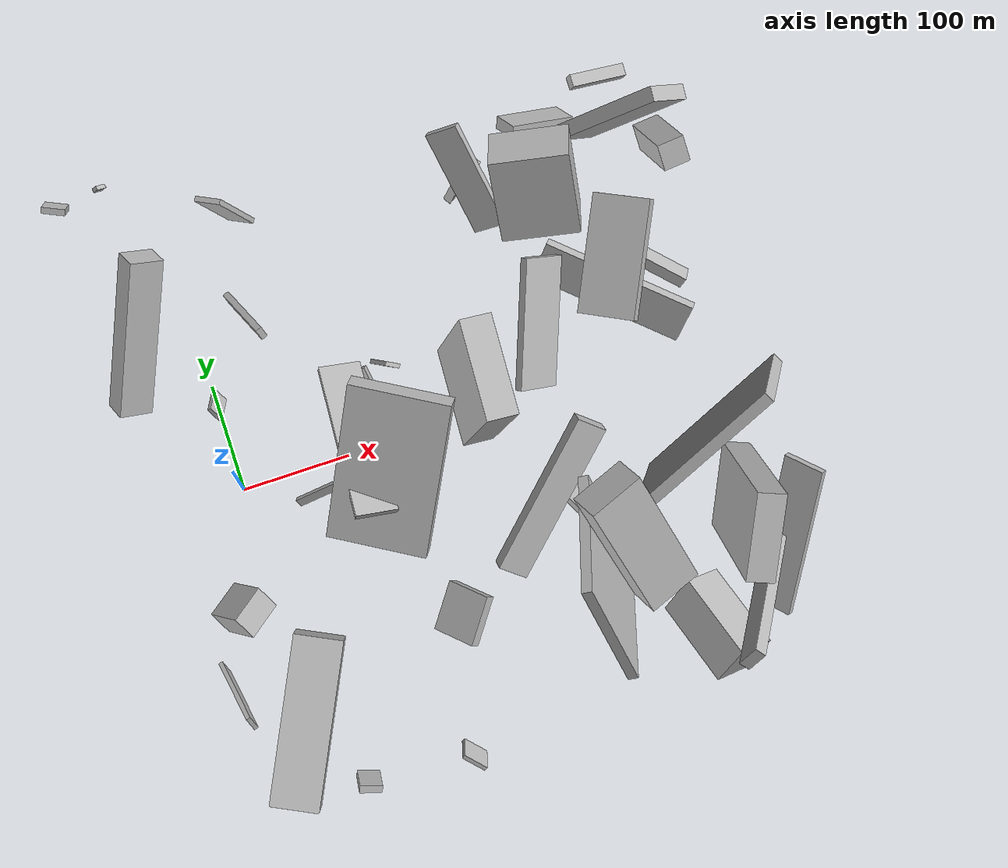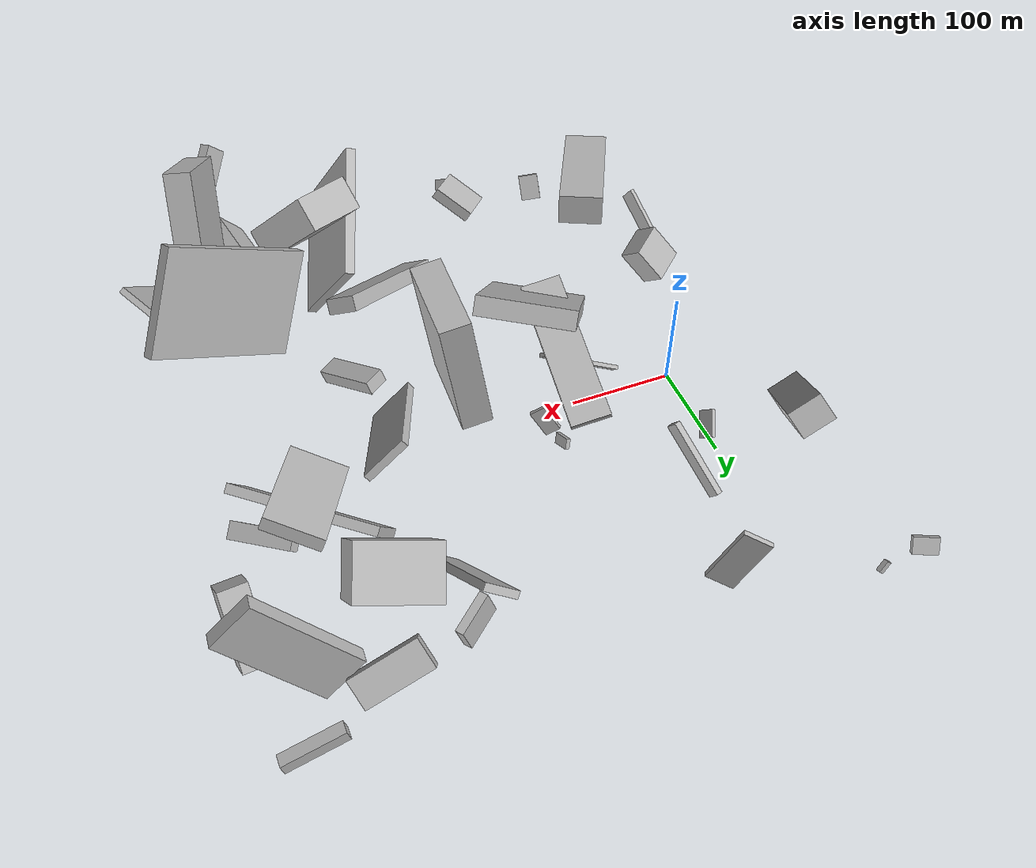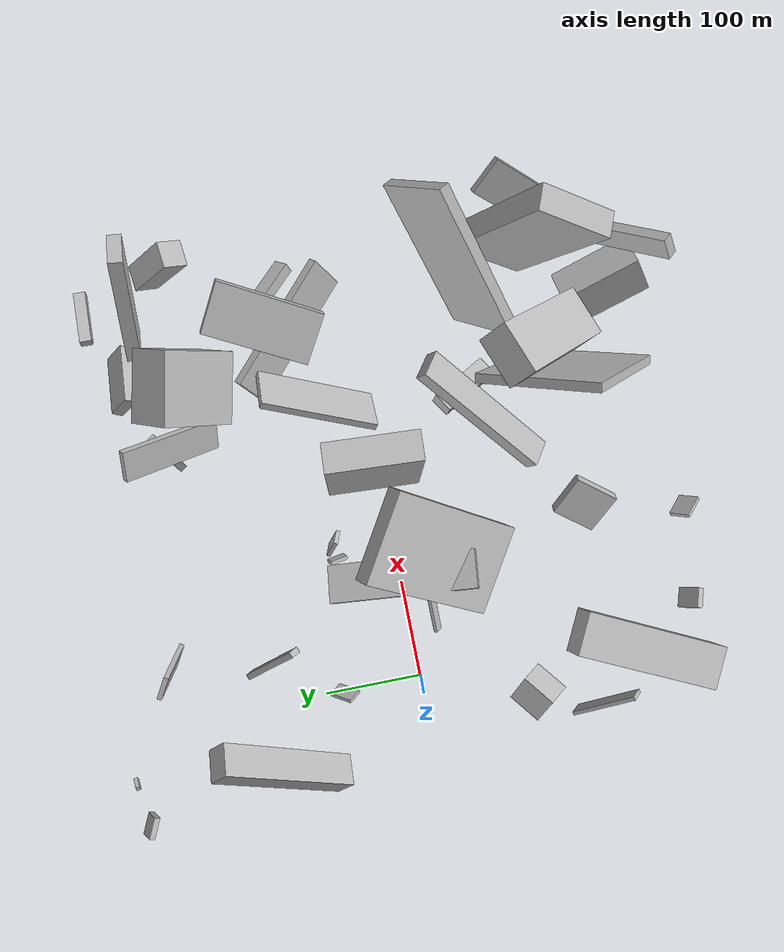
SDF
<sdf version="1.6">
 <world name="default">
  <scene>
   <sky><clouds><speed>12</speed></clouds></sky>
   <ambient>0.4 0.4 0.4 1</ambient>
   <background>0.7 0.7 0.7 1</background>
   <shadows>1</shadows>
  </scene>
  <gravity>0 0 -9.8066</gravity>
  <magnetic_field>6e-06 2.3e-05 -4.2e-05</magnetic_field>
  <physics default="0" name="default_physics" type="ode">
   <ode>
    <solver>
     <type>quick</type>
     <iters>10</iters>
     <sor>1.0</sor>
     <use_dynamic_moi_rescaling>0</use_dynamic_moi_rescaling>
    </solver>
    <constraints>
     <cfm>0</cfm>
     <erp>0.2</erp>
     <contact_max_correcting_vel>100</contact_max_correcting_vel>
     <contact_surface_layer>0.001</contact_surface_layer>
    </constraints>
   </ode>
   <max_step_size>0.004</max_step_size>
   <real_time_factor>1</real_time_factor>
   <real_time_update_rate>250</real_time_update_rate>
  </physics>
  <light name="sun" type="directional">
   <pose>0 0 10 0 0 0</pose>
   <diffuse>0.8 0.8 0.8 1</diffuse>
   <specular>0.2 0.2 0.2 1</specular>
   <attenuation>
    <range>1000</range>
    <constant>0.9</constant>
    <linear>0.01</linear>
    <quadratic>0.001</quadratic>
   </attenuation>
   <direction>-0.5 0.1 -0.9</direction>
  </light>
  <model name="building_1">
   <static>0</static>
   <pose>341.3241753347147 188.98682742755034 59.43881009085074 -0.26911516207293557 -0.8874788994808488 1.5375328962061625</pose>
   <link name="link">
    <gravity>0</gravity>
    <pose>0 0 24.5 0 0 0</pose>
    <collision name="collision"><geometry><box><size>84 72 49</size></box></geometry></collision>
    <visual name="visual">
     <cast_shadows>0</cast_shadows>
     <geometry><box><size>84 72 49</size></box></geometry>
     <material>
      <script>
       <uri>model://HANNAS_wall/materials/scripts</uri>
       <uri>model://HANNAS_wall/materials/textures</uri>
       <name>vrc/HANNAS_wall</name>
      </script>
     </material>
    </visual>
   </link>
  </model>
  <model name="building_2">
   <static>0</static>
   <pose>-4.485407557826331 70.13065720400009 21.68089521841386 2.400962235570819 -0.685406590163833 2.137800301535041</pose>
   <link name="link">
    <gravity>0</gravity>
    <pose>0 0 13.0 0 0 0</pose>
    <collision name="collision"><geometry><box><size>16 4 26</size></box></geometry></collision>
    <visual name="visual">
     <cast_shadows>0</cast_shadows>
     <geometry><box><size>16 4 26</size></box></geometry>
     <material>
      <script>
       <uri>model://HANNAS_wall/materials/scripts</uri>
       <uri>model://HANNAS_wall/materials/textures</uri>
       <name>vrc/HANNAS_wall</name>
      </script>
     </material>
    </visual>
   </link>
  </model>
  <model name="building_3">
   <static>0</static>
   <pose>213.54506811453038 7.270056716595072 70.34006649389855 -0.14176200200476338 0.046151955600100776 -1.6270030032175242</pose>
   <link name="link">
    <gravity>0</gravity>
    <pose>0 0 59.0 0 0 0</pose>
    <collision name="collision"><geometry><box><size>88 28 118</size></box></geometry></collision>
    <visual name="visual">
     <cast_shadows>0</cast_shadows>
     <geometry><box><size>88 28 118</size></box></geometry>
     <material>
      <script>
       <uri>model://HANNAS_wall/materials/scripts</uri>
       <uri>model://HANNAS_wall/materials/textures</uri>
       <name>vrc/HANNAS_wall</name>
      </script>
     </material>
    </visual>
   </link>
  </model>
  <model name="building_4">
   <static>0</static>
   <pose>-3.0382214673948305 -217.79779560227814 66.58859171720627 0.018168300311872086 -0.21869888226140258 1.10585386549219</pose>
   <link name="link">
    <gravity>0</gravity>
    <pose>0 0 14.5 0 0 0</pose>
    <collision name="collision"><geometry><box><size>148 43 29</size></box></geometry></collision>
    <visual name="visual">
     <cast_shadows>0</cast_shadows>
     <geometry><box><size>148 43 29</size></box></geometry>
     <material>
      <script>
       <uri>model://HANNAS_wall/materials/scripts</uri>
       <uri>model://HANNAS_wall/materials/textures</uri>
       <name>vrc/HANNAS_wall</name>
      </script>
     </material>
    </visual>
   </link>
  </model>
  <model name="building_5">
   <static>0</static>
   <pose>114.72503216495045 -284.0923824997829 54.79851258523588 2.085418001735694 -0.5973357164530603 0.45581844734206417</pose>
   <link name="link">
    <gravity>0</gravity>
    <pose>0 0 12.0 0 0 0</pose>
    <collision name="collision"><geometry><box><size>4 21 24</size></box></geometry></collision>
    <visual name="visual">
     <cast_shadows>0</cast_shadows>
     <geometry><box><size>4 21 24</size></box></geometry>
     <material>
      <script>
       <uri>model://HANNAS_wall/materials/scripts</uri>
       <uri>model://HANNAS_wall/materials/textures</uri>
       <name>vrc/HANNAS_wall</name>
      </script>
     </material>
    </visual>
   </link>
  </model>
  <model name="building_6">
   <static>0</static>
   <pose>99.82140010536483 -91.90368319211547 58.472483312765064 0.08400661509629234 -0.90679042009207 -2.1800657121787244</pose>
   <link name="link">
    <gravity>0</gravity>
    <pose>0 0 75.0 0 0 0</pose>
    <collision name="collision"><geometry><box><size>18 90 150</size></box></geometry></collision>
    <visual name="visual">
     <cast_shadows>0</cast_shadows>
     <geometry><box><size>18 90 150</size></box></geometry>
     <material>
      <script>
       <uri>model://HANNAS_wall/materials/scripts</uri>
       <uri>model://HANNAS_wall/materials/textures</uri>
       <name>vrc/HANNAS_wall</name>
      </script>
     </material>
    </visual>
   </link>
  </model>
  <model name="building_7">
   <static>0</static>
   <pose>373.63184247190253 -250.9638062273059 44.071215980724546 0.9512389793259892 -0.24778044106143918 -1.308903895619875</pose>
   <link name="link">
    <gravity>0</gravity>
    <pose>0 0 18.5 0 0 0</pose>
    <collision name="collision"><geometry><box><size>79 43 37</size></box></geometry></collision>
    <visual name="visual">
     <cast_shadows>0</cast_shadows>
     <geometry><box><size>79 43 37</size></box></geometry>
     <material>
      <script>
       <uri>model://HANNAS_wall/materials/scripts</uri>
       <uri>model://HANNAS_wall/materials/textures</uri>
       <name>vrc/HANNAS_wall</name>
      </script>
     </material>
    </visual>
   </link>
  </model>
  <model name="building_8">
   <static>0</static>
   <pose>443.6733432730488 171.97681833979286 68.74798123186376 1.5408420919156613 -0.6652661412559701 1.6825842416186303</pose>
   <link name="link">
    <gravity>0</gravity>
    <pose>0 0 12.5 0 0 0</pose>
    <collision name="collision"><geometry><box><size>25 68 25</size></box></geometry></collision>
    <visual name="visual">
     <cast_shadows>0</cast_shadows>
     <geometry><box><size>25 68 25</size></box></geometry>
     <material>
      <script>
       <uri>model://HANNAS_wall/materials/scripts</uri>
       <uri>model://HANNAS_wall/materials/textures</uri>
       <name>vrc/HANNAS_wall</name>
      </script>
     </material>
    </visual>
   </link>
  </model>
  <model name="building_9">
   <static>0</static>
   <pose>275.556150810104 193.3356480711614 73.71070438312589 2.412689363756149 0.5809511947962874 2.9282633881551132</pose>
   <link name="link">
    <gravity>0</gravity>
    <pose>0 0 3.5 0 0 0</pose>
    <collision name="collision"><geometry><box><size>32 103 7</size></box></geometry></collision>
    <visual name="visual">
     <cast_shadows>0</cast_shadows>
     <geometry><box><size>32 103 7</size></box></geometry>
     <material>
      <script>
       <uri>model://HANNAS_wall/materials/scripts</uri>
       <uri>model://HANNAS_wall/materials/textures</uri>
       <name>vrc/HANNAS_wall</name>
      </script>
     </material>
    </visual>
   </link>
  </model>
  <model name="building_10">
   <static>0</static>
   <pose>-31.98919082969271 144.602893576131 84.20815229511022 0.9161901974890938 -0.6478532897189362 -1.1649402083438447</pose>
   <link name="link">
    <gravity>0</gravity>
    <pose>0 0 15.5 0 0 0</pose>
    <collision name="collision"><geometry><box><size>24 150 31</size></box></geometry></collision>
    <visual name="visual">
     <cast_shadows>0</cast_shadows>
     <geometry><box><size>24 150 31</size></box></geometry>
     <material>
      <script>
       <uri>model://HANNAS_wall/materials/scripts</uri>
       <uri>model://HANNAS_wall/materials/textures</uri>
       <name>vrc/HANNAS_wall</name>
      </script>
     </material>
    </visual>
   </link>
  </model>
  <model name="building_11">
   <static>0</static>
   <pose>292.9850233814363 219.51728196338587 21.386457914637152 0.35819159551917484 -1.280609815233618 0.2602824503260608</pose>
   <link name="link">
    <gravity>0</gravity>
    <pose>0 0 19.0 0 0 0</pose>
    <collision name="collision"><geometry><box><size>29 8 38</size></box></geometry></collision>
    <visual name="visual">
     <cast_shadows>0</cast_shadows>
     <geometry><box><size>29 8 38</size></box></geometry>
     <material>
      <script>
       <uri>model://HANNAS_wall/materials/scripts</uri>
       <uri>model://HANNAS_wall/materials/textures</uri>
       <name>vrc/HANNAS_wall</name>
      </script>
     </material>
    </visual>
   </link>
  </model>
  <model name="building_12">
   <static>0</static>
   <pose>403.927195090674 -143.6360510587313 94.70214094065717 0.46784954947016427 0.08159491772225666 -0.3682355850105553</pose>
   <link name="link">
    <gravity>0</gravity>
    <pose>0 0 69.5 0 0 0</pose>
    <collision name="collision"><geometry><box><size>24 75 139</size></box></geometry></collision>
    <visual name="visual">
     <cast_shadows>0</cast_shadows>
     <geometry><box><size>24 75 139</size></box></geometry>
     <material>
      <script>
       <uri>model://HANNAS_wall/materials/scripts</uri>
       <uri>model://HANNAS_wall/materials/textures</uri>
       <name>vrc/HANNAS_wall</name>
      </script>
     </material>
    </visual>
   </link>
  </model>
  <model name="building_13">
   <static>0</static>
   <pose>136.50917079788246 -167.31756879692455 121.56860775875444 1.0630159651546958 -0.2989524398669786 0.9400089940438033</pose>
   <link name="link">
    <gravity>0</gravity>
    <pose>0 0 19.5 0 0 0</pose>
    <collision name="collision"><geometry><box><size>43 10 39</size></box></geometry></collision>
    <visual name="visual">
     <cast_shadows>0</cast_shadows>
     <geometry><box><size>43 10 39</size></box></geometry>
     <material>
      <script>
       <uri>model://HANNAS_wall/materials/scripts</uri>
       <uri>model://HANNAS_wall/materials/textures</uri>
       <name>vrc/HANNAS_wall</name>
      </script>
     </material>
    </visual>
   </link>
  </model>
  <model name="building_14">
   <static>0</static>
   <pose>429.51183378864124 216.9393368979111 75.38772334321413 1.822437373246319 -0.845138203506616 -0.25706743272080584</pose>
   <link name="link">
    <gravity>0</gravity>
    <pose>0 0 7.0 0 0 0</pose>
    <collision name="collision"><geometry><box><size>117 46 14</size></box></geometry></collision>
    <visual name="visual">
     <cast_shadows>0</cast_shadows>
     <geometry><box><size>117 46 14</size></box></geometry>
     <material>
      <script>
       <uri>model://HANNAS_wall/materials/scripts</uri>
       <uri>model://HANNAS_wall/materials/textures</uri>
       <name>vrc/HANNAS_wall</name>
      </script>
     </material>
    </visual>
   </link>
  </model>
  <model name="building_15">
   <static>0</static>
   <pose>291.90226625806565 -140.20120600192848 87.14593790334507 1.0105892137977253 -0.3286537784365179 -0.1525173754773271</pose>
   <link name="link">
    <gravity>0</gravity>
    <pose>0 0 60.0 0 0 0</pose>
    <collision name="collision"><geometry><box><size>9 131 120</size></box></geometry></collision>
    <visual name="visual">
     <cast_shadows>0</cast_shadows>
     <geometry><box><size>9 131 120</size></box></geometry>
     <material>
      <script>
       <uri>model://HANNAS_wall/materials/scripts</uri>
       <uri>model://HANNAS_wall/materials/textures</uri>
       <name>vrc/HANNAS_wall</name>
      </script>
     </material>
    </visual>
   </link>
  </model>
  <model name="building_16">
   <static>0</static>
   <pose>437.4736961668148 -200.84165414529423 77.47884674427709 2.5088364386152686 -0.7322714044268358 1.1297183756612086</pose>
   <link name="link">
    <gravity>0</gravity>
    <pose>0 0 3.0 0 0 0</pose>
    <collision name="collision"><geometry><box><size>150 37 6</size></box></geometry></collision>
    <visual name="visual">
     <cast_shadows>0</cast_shadows>
     <geometry><box><size>150 37 6</size></box></geometry>
     <material>
      <script>
       <uri>model://HANNAS_wall/materials/scripts</uri>
       <uri>model://HANNAS_wall/materials/textures</uri>
       <name>vrc/HANNAS_wall</name>
      </script>
     </material>
    </visual>
   </link>
  </model>
  <model name="building_17">
   <static>0</static>
   <pose>291.4215026468779 46.20860726039937 88.06212058353849 0.7846402108087944 -0.4076658903612219 1.2179453324406828</pose>
   <link name="link">
    <gravity>0</gravity>
    <pose>0 0 3.5 0 0 0</pose>
    <collision name="collision"><geometry><box><size>117 45 7</size></box></geometry></collision>
    <visual name="visual">
     <cast_shadows>0</cast_shadows>
     <geometry><box><size>117 45 7</size></box></geometry>
     <material>
      <script>
       <uri>model://HANNAS_wall/materials/scripts</uri>
       <uri>model://HANNAS_wall/materials/textures</uri>
       <name>vrc/HANNAS_wall</name>
      </script>
     </material>
    </visual>
   </link>
  </model>
  <model name="building_18">
   <static>0</static>
   <pose>319.0723455177457 -208.61060873415556 112.74304989580106 0.021330773510676037 -0.7699747997948834 -1.2156661254960102</pose>
   <link name="link">
    <gravity>0</gravity>
    <pose>0 0 63.5 0 0 0</pose>
    <collision name="collision"><geometry><box><size>31 49 127</size></box></geometry></collision>
    <visual name="visual">
     <cast_shadows>0</cast_shadows>
     <geometry><box><size>31 49 127</size></box></geometry>
     <material>
      <script>
       <uri>model://HANNAS_wall/materials/scripts</uri>
       <uri>model://HANNAS_wall/materials/textures</uri>
       <name>vrc/HANNAS_wall</name>
      </script>
     </material>
    </visual>
   </link>
  </model>
  <model name="building_19">
   <static>0</static>
   <pose>271.5147636570479 -75.70454491055837 21.906914719657433 1.9515370978753122 0.09386557278754872 0.5598411907401923</pose>
   <link name="link">
    <gravity>0</gravity>
    <pose>0 0 34.0 0 0 0</pose>
    <collision name="collision"><geometry><box><size>21 14 68</size></box></geometry></collision>
    <visual name="visual">
     <cast_shadows>0</cast_shadows>
     <geometry><box><size>21 14 68</size></box></geometry>
     <material>
      <script>
       <uri>model://HANNAS_wall/materials/scripts</uri>
       <uri>model://HANNAS_wall/materials/textures</uri>
       <name>vrc/HANNAS_wall</name>
      </script>
     </material>
    </visual>
   </link>
  </model>
  <model name="building_20">
   <static>0</static>
   <pose>19.10648433477345 -282.1354959653547 32.32226442543124 1.744208841490299 -0.5325572881038095 1.1686173871656338</pose>
   <link name="link">
    <gravity>0</gravity>
    <pose>0 0 10.0 0 0 0</pose>
    <collision name="collision"><geometry><box><size>7 26 20</size></box></geometry></collision>
    <visual name="visual">
     <cast_shadows>0</cast_shadows>
     <geometry><box><size>7 26 20</size></box></geometry>
     <material>
      <script>
       <uri>model://HANNAS_wall/materials/scripts</uri>
       <uri>model://HANNAS_wall/materials/textures</uri>
       <name>vrc/HANNAS_wall</name>
      </script>
     </material>
    </visual>
   </link>
  </model>
  <model name="building_21">
   <static>0</static>
   <pose>440.8650529699008 54.412027395139646 33.118299209342666 -1.1882679822774298 -0.9089397486662306 0.5107343180184685</pose>
   <link name="link">
    <gravity>0</gravity>
    <pose>0 0 32.0 0 0 0</pose>
    <collision name="collision"><geometry><box><size>11 16 64</size></box></geometry></collision>
    <visual name="visual">
     <cast_shadows>0</cast_shadows>
     <geometry><box><size>11 16 64</size></box></geometry>
     <material>
      <script>
       <uri>model://HANNAS_wall/materials/scripts</uri>
       <uri>model://HANNAS_wall/materials/textures</uri>
       <name>vrc/HANNAS_wall</name>
      </script>
     </material>
    </visual>
   </link>
  </model>
  <model name="building_22">
   <static>0</static>
   <pose>430.5591535983919 260.9712980359282 22.154829159200826 1.458104320299367 -0.27974868539612147 -3.124725955301797</pose>
   <link name="link">
    <gravity>0</gravity>
    <pose>0 0 6.0 0 0 0</pose>
    <collision name="collision"><geometry><box><size>56 10 12</size></box></geometry></collision>
    <visual name="visual">
     <cast_shadows>0</cast_shadows>
     <geometry><box><size>56 10 12</size></box></geometry>
     <material>
      <script>
       <uri>model://HANNAS_wall/materials/scripts</uri>
       <uri>model://HANNAS_wall/materials/textures</uri>
       <name>vrc/HANNAS_wall</name>
      </script>
     </material>
    </visual>
   </link>
  </model>
  <model name="building_23">
   <static>0</static>
   <pose>376.616120845781 66.0192714552624 36.56977248682825 -0.9319843095001313 -0.04625876069521432 2.4049030989451903</pose>
   <link name="link">
    <gravity>0</gravity>
    <pose>0 0 4.5 0 0 0</pose>
    <collision name="collision"><geometry><box><size>144 41 9</size></box></geometry></collision>
    <visual name="visual">
     <cast_shadows>0</cast_shadows>
     <geometry><box><size>144 41 9</size></box></geometry>
     <material>
      <script>
       <uri>model://HANNAS_wall/materials/scripts</uri>
       <uri>model://HANNAS_wall/materials/textures</uri>
       <name>vrc/HANNAS_wall</name>
      </script>
     </material>
    </visual>
   </link>
  </model>
  <model name="building_24">
   <static>0</static>
   <pose>354.11818981377434 246.96419627863833 30.10513772548012 0.5705248818604948 -0.7135877337920161 1.1806448193573547</pose>
   <link name="link">
    <gravity>0</gravity>
    <pose>0 0 14.0 0 0 0</pose>
    <collision name="collision"><geometry><box><size>12 65 28</size></box></geometry></collision>
    <visual name="visual">
     <cast_shadows>0</cast_shadows>
     <geometry><box><size>12 65 28</size></box></geometry>
     <material>
      <script>
       <uri>model://HANNAS_wall/materials/scripts</uri>
       <uri>model://HANNAS_wall/materials/textures</uri>
       <name>vrc/HANNAS_wall</name>
      </script>
     </material>
    </visual>
   </link>
  </model>
  <model name="building_25">
   <static>0</static>
   <pose>50.77185535066165 251.43757307694773 39.89884402122297 1.162911874641582 -0.09148252776838371 1.0269759124054263</pose>
   <link name="link">
    <gravity>0</gravity>
    <pose>0 0 13.5 0 0 0</pose>
    <collision name="collision"><geometry><box><size>5 62 27</size></box></geometry></collision>
    <visual name="visual">
     <cast_shadows>0</cast_shadows>
     <geometry><box><size>5 62 27</size></box></geometry>
     <material>
      <script>
       <uri>model://HANNAS_wall/materials/scripts</uri>
       <uri>model://HANNAS_wall/materials/textures</uri>
       <name>vrc/HANNAS_wall</name>
      </script>
     </material>
    </visual>
   </link>
  </model>
  <model name="building_26">
   <static>0</static>
   <pose>-75.10450925965603 286.8662673992716 52.79284169694199 -1.5657526005357167 -0.6359664833213418 1.1335089894705423</pose>
   <link name="link">
    <gravity>0</gravity>
    <pose>0 0 11.0 0 0 0</pose>
    <collision name="collision"><geometry><box><size>6 15 22</size></box></geometry></collision>
    <visual name="visual">
     <cast_shadows>0</cast_shadows>
     <geometry><box><size>6 15 22</size></box></geometry>
     <material>
      <script>
       <uri>model://HANNAS_wall/materials/scripts</uri>
       <uri>model://HANNAS_wall/materials/textures</uri>
       <name>vrc/HANNAS_wall</name>
      </script>
     </material>
    </visual>
   </link>
  </model>
  <model name="building_27">
   <static>0</static>
   <pose>357.59339447947417 95.21209200840808 74.12567192970538 1.2161352111377297 -0.32134353059237203 1.125646694107676</pose>
   <link name="link">
    <gravity>0</gravity>
    <pose>0 0 26.5 0 0 0</pose>
    <collision name="collision"><geometry><box><size>108 12 53</size></box></geometry></collision>
    <visual name="visual">
     <cast_shadows>0</cast_shadows>
     <geometry><box><size>108 12 53</size></box></geometry>
     <material>
      <script>
       <uri>model://HANNAS_wall/materials/scripts</uri>
       <uri>model://HANNAS_wall/materials/textures</uri>
       <name>vrc/HANNAS_wall</name>
      </script>
     </material>
    </visual>
   </link>
  </model>
  <model name="building_28">
   <static>0</static>
   <pose>-55.53634512131795 -178.32326910941907 37.700025201990464 -1.6632321538278838 -0.9723948014576204 1.8911613361517818</pose>
   <link name="link">
    <gravity>0</gravity>
    <pose>0 0 2.0 0 0 0</pose>
    <collision name="collision"><geometry><box><size>18 70 4</size></box></geometry></collision>
    <visual name="visual">
     <cast_shadows>0</cast_shadows>
     <geometry><box><size>18 70 4</size></box></geometry>
     <material>
      <script>
       <uri>model://HANNAS_wall/materials/scripts</uri>
       <uri>model://HANNAS_wall/materials/textures</uri>
       <name>vrc/HANNAS_wall</name>
      </script>
     </material>
    </visual>
   </link>
  </model>
  <model name="building_29">
   <static>0</static>
   <pose>139.0814048891817 61.69173107372163 22.24204244311246 -0.414492777577398 0.3348028759947249 -3.114046459154063</pose>
   <link name="link">
    <gravity>0</gravity>
    <pose>0 0 5.0 0 0 0</pose>
    <collision name="collision"><geometry><box><size>4 18 10</size></box></geometry></collision>
    <visual name="visual">
     <cast_shadows>0</cast_shadows>
     <geometry><box><size>4 18 10</size></box></geometry>
     <material>
      <script>
       <uri>model://HANNAS_wall/materials/scripts</uri>
       <uri>model://HANNAS_wall/materials/textures</uri>
       <name>vrc/HANNAS_wall</name>
      </script>
     </material>
    </visual>
   </link>
  </model>
  <model name="building_30">
   <static>0</static>
   <pose>-24.90513145504901 -120.03096543397476 49.299677778811684 -0.36522069837243676 -0.8579202352650797 -0.6169946377570181</pose>
   <link name="link">
    <gravity>0</gravity>
    <pose>0 0 12.5 0 0 0</pose>
    <collision name="collision"><geometry><box><size>39 35 25</size></box></geometry></collision>
    <visual name="visual">
     <cast_shadows>0</cast_shadows>
     <geometry><box><size>39 35 25</size></box></geometry>
     <material>
      <script>
       <uri>model://HANNAS_wall/materials/scripts</uri>
       <uri>model://HANNAS_wall/materials/textures</uri>
       <name>vrc/HANNAS_wall</name>
      </script>
     </material>
    </visual>
   </link>
  </model>
  <model name="building_31">
   <static>0</static>
   <pose>201.3974953929706 -152.77641959930835 78.8965664712813 -0.7319266624542994 -0.9436248003194868 -1.557982393971802</pose>
   <link name="link">
    <gravity>0</gravity>
    <pose>0 0 74.5 0 0 0</pose>
    <collision name="collision"><geometry><box><size>14 27 149</size></box></geometry></collision>
    <visual name="visual">
     <cast_shadows>0</cast_shadows>
     <geometry><box><size>14 27 149</size></box></geometry>
     <material>
      <script>
       <uri>model://HANNAS_wall/materials/scripts</uri>
       <uri>model://HANNAS_wall/materials/textures</uri>
       <name>vrc/HANNAS_wall</name>
      </script>
     </material>
    </visual>
   </link>
  </model>
  <model name="building_32">
   <static>0</static>
   <pose>-45.37568407157728 296.18296822264324 56.781072754043926 2.320710568778718 -0.15820832639977056 1.7351650307910498</pose>
   <link name="link">
    <gravity>0</gravity>
    <pose>0 0 5.5 0 0 0</pose>
    <collision name="collision"><geometry><box><size>4 6 11</size></box></geometry></collision>
    <visual name="visual">
     <cast_shadows>0</cast_shadows>
     <geometry><box><size>4 6 11</size></box></geometry>
     <material>
      <script>
       <uri>model://HANNAS_wall/materials/scripts</uri>
       <uri>model://HANNAS_wall/materials/textures</uri>
       <name>vrc/HANNAS_wall</name>
      </script>
     </material>
    </visual>
   </link>
  </model>
  <model name="building_33">
   <static>0</static>
   <pose>81.14003763531622 -23.819912946267905 28.587289428311948 2.384799143150642 -0.5463126322610341 0.009484846584123184</pose>
   <link name="link">
    <gravity>0</gravity>
    <pose>0 0 4.0 0 0 0</pose>
    <collision name="collision"><geometry><box><size>92 4 8</size></box></geometry></collision>
    <visual name="visual">
     <cast_shadows>0</cast_shadows>
     <geometry><box><size>92 4 8</size></box></geometry>
     <material>
      <script>
       <uri>model://HANNAS_wall/materials/scripts</uri>
       <uri>model://HANNAS_wall/materials/textures</uri>
       <name>vrc/HANNAS_wall</name>
      </script>
     </material>
    </visual>
   </link>
  </model>
  <model name="building_34">
   <static>0</static>
   <pose>115.47740841008633 70.57052800276989 54.83727017347797 1.2849845120914904 0.1971185095013752 -0.1224351925364742</pose>
   <link name="link">
    <gravity>0</gravity>
    <pose>0 0 75.0 0 0 0</pose>
    <collision name="collision"><geometry><box><size>38 6 150</size></box></geometry></collision>
    <visual name="visual">
     <cast_shadows>0</cast_shadows>
     <geometry><box><size>38 6 150</size></box></geometry>
     <material>
      <script>
       <uri>model://HANNAS_wall/materials/scripts</uri>
       <uri>model://HANNAS_wall/materials/textures</uri>
       <name>vrc/HANNAS_wall</name>
      </script>
     </material>
    </visual>
   </link>
  </model>
  <model name="building_35">
   <static>0</static>
   <pose>160.93023226132718 56.29251575855378 56.01563070620742 0.3360061231008074 -0.9108977148089081 -0.7665064126475131</pose>
   <link name="link">
    <gravity>0</gravity>
    <pose>0 0 7.5 0 0 0</pose>
    <collision name="collision"><geometry><box><size>26 4 15</size></box></geometry></collision>
    <visual name="visual">
     <cast_shadows>0</cast_shadows>
     <geometry><box><size>26 4 15</size></box></geometry>
     <material>
      <script>
       <uri>model://HANNAS_wall/materials/scripts</uri>
       <uri>model://HANNAS_wall/materials/textures</uri>
       <name>vrc/HANNAS_wall</name>
      </script>
     </material>
    </visual>
   </link>
  </model>
  <model name="building_36">
   <static>0</static>
   <pose>388.71530609710805 -242.16004780352205 120.78078350127548 1.9323680141510524 -0.8179598209279703 0.43496145441796835</pose>
   <link name="link">
    <gravity>0</gravity>
    <pose>0 0 5.0 0 0 0</pose>
    <collision name="collision"><geometry><box><size>22 150 10</size></box></geometry></collision>
    <visual name="visual">
     <cast_shadows>0</cast_shadows>
     <geometry><box><size>22 150 10</size></box></geometry>
     <material>
      <script>
       <uri>model://HANNAS_wall/materials/scripts</uri>
       <uri>model://HANNAS_wall/materials/textures</uri>
       <name>vrc/HANNAS_wall</name>
      </script>
     </material>
    </visual>
   </link>
  </model>
  <model name="building_37">
   <static>0</static>
   <pose>52.349263605730044 142.7684970345667 53.92990239329897 1.6087533009762165 -0.6685396360233633 -1.2231723170951652</pose>
   <link name="link">
    <gravity>0</gravity>
    <pose>0 0 3.0 0 0 0</pose>
    <collision name="collision"><geometry><box><size>72 12 6</size></box></geometry></collision>
    <visual name="visual">
     <cast_shadows>0</cast_shadows>
     <geometry><box><size>72 12 6</size></box></geometry>
     <material>
      <script>
       <uri>model://HANNAS_wall/materials/scripts</uri>
       <uri>model://HANNAS_wall/materials/textures</uri>
       <name>vrc/HANNAS_wall</name>
      </script>
     </material>
    </visual>
   </link>
  </model>
  <model name="building_38">
   <static>0</static>
   <pose>409.7467423535819 -82.62266304604171 103.56419657067393 0.5752456708895102 0.21455595851991086 -1.0620800890591315</pose>
   <link name="link">
    <gravity>0</gravity>
    <pose>0 0 48.5 0 0 0</pose>
    <collision name="collision"><geometry><box><size>10 150 97</size></box></geometry></collision>
    <visual name="visual">
     <cast_shadows>0</cast_shadows>
     <geometry><box><size>10 150 97</size></box></geometry>
     <material>
      <script>
       <uri>model://HANNAS_wall/materials/scripts</uri>
       <uri>model://HANNAS_wall/materials/textures</uri>
       <name>vrc/HANNAS_wall</name>
      </script>
     </material>
    </visual>
   </link>
  </model>
 </world>
</sdf>
